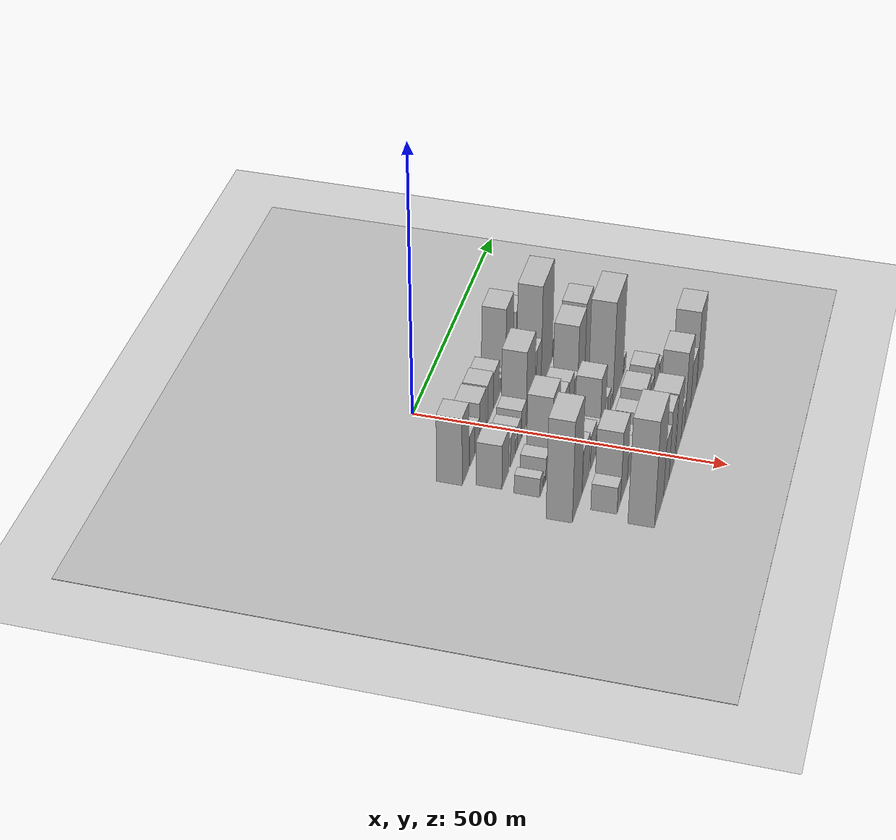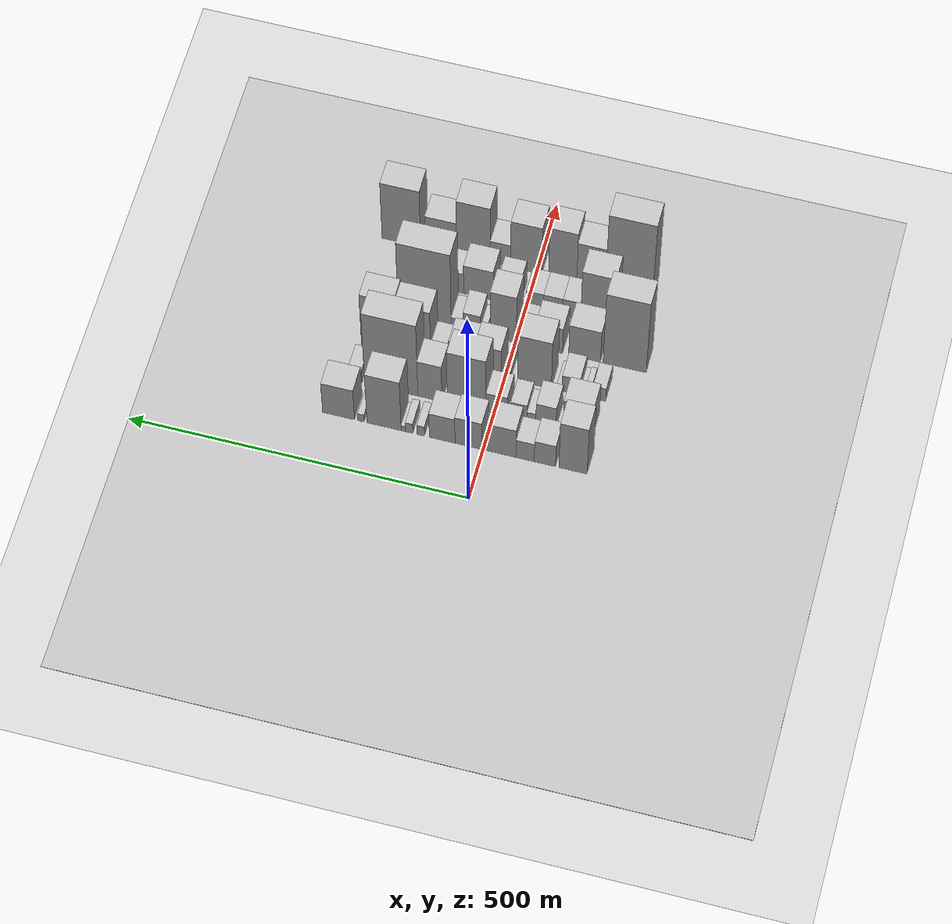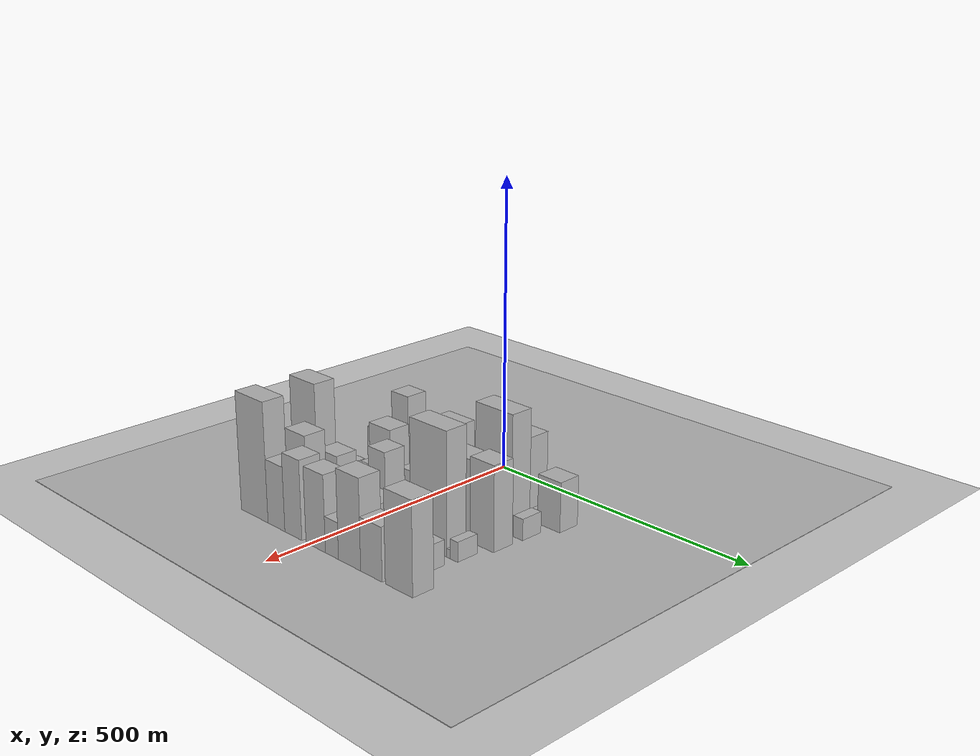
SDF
<sdf version="1.6">
 <world name="default">
  <include><name>ground_plane_1</name><uri>model://HANNAS_ground_plane</uri></include>
  <include>
   <name>ground_plane_2</name>
   <uri>model://HANNAS_ground_plane</uri>
   <pose>100 0 0  0 0 0</pose>
  </include>
  <model name="building_21">
   <static>1</static>
   <pose>100.0000 -129.6058 0 0.000000 0.000000 0.000000</pose>
   <link name="link">
    <pose>0 0 64.50 0 0 0</pose>
    <collision name="collision"><geometry><box><size>40.0000 40.9424 129.0000</size></box></geometry></collision>
    <visual name="visual">
     <cast_shadows>0</cast_shadows>
     <geometry><box><size>40.0000 40.9424 129.0000</size></box></geometry>
     <material>
      <script>
       <uri>model://HANNAS_wall/materials/scripts</uri>
       <uri>model://HANNAS_wall/materials/textures</uri>
       <name>vrc/HANNAS_wall</name>
      </script>
     </material>
    </visual>
   </link>
  </model>
  <model name="building_22">
   <static>1</static>
   <pose>100.0000 -88.7523 0 0.000000 0.000000 0.000000</pose>
   <link name="link">
    <pose>0 0 30.00 0 0 0</pose>
    <collision name="collision"><geometry><box><size>40.0000 30.7647 60.0000</size></box></geometry></collision>
    <visual name="visual">
     <cast_shadows>0</cast_shadows>
     <geometry><box><size>40.0000 30.7647 60.0000</size></box></geometry>
     <material>
      <script>
       <uri>model://HANNAS_wall/materials/scripts</uri>
       <uri>model://HANNAS_wall/materials/textures</uri>
       <name>vrc/HANNAS_wall</name>
      </script>
     </material>
    </visual>
   </link>
  </model>
  <model name="building_23">
   <static>1</static>
   <pose>100.0000 -59.9895 0 0.000000 0.000000 0.000000</pose>
   <link name="link">
    <pose>0 0 25.50 0 0 0</pose>
    <collision name="collision"><geometry><box><size>40.0000 26.7610 51.0000</size></box></geometry></collision>
    <visual name="visual">
     <cast_shadows>0</cast_shadows>
     <geometry><box><size>40.0000 26.7610 51.0000</size></box></geometry>
     <material>
      <script>
       <uri>model://HANNAS_wall/materials/scripts</uri>
       <uri>model://HANNAS_wall/materials/textures</uri>
       <name>vrc/HANNAS_wall</name>
      </script>
     </material>
    </visual>
   </link>
  </model>
  <model name="building_24">
   <static>1</static>
   <pose>100.0000 -25.3485 0 0.000000 0.000000 0.000000</pose>
   <link name="link">
    <pose>0 0 39.00 0 0 0</pose>
    <collision name="collision"><geometry><box><size>40.0000 42.5211 78.0000</size></box></geometry></collision>
    <visual name="visual">
     <cast_shadows>0</cast_shadows>
     <geometry><box><size>40.0000 42.5211 78.0000</size></box></geometry>
     <material>
      <script>
       <uri>model://HANNAS_wall/materials/scripts</uri>
       <uri>model://HANNAS_wall/materials/textures</uri>
       <name>vrc/HANNAS_wall</name>
      </script>
     </material>
    </visual>
   </link>
  </model>
  <model name="building_25">
   <static>1</static>
   <pose>100.0000 22.5860 0 0.000000 0.000000 0.000000</pose>
   <link name="link">
    <pose>0 0 37.50 0 0 0</pose>
    <collision name="collision"><geometry><box><size>40.0000 39.3479 75.0000</size></box></geometry></collision>
    <visual name="visual">
     <cast_shadows>0</cast_shadows>
     <geometry><box><size>40.0000 39.3479 75.0000</size></box></geometry>
     <material>
      <script>
       <uri>model://HANNAS_wall/materials/scripts</uri>
       <uri>model://HANNAS_wall/materials/textures</uri>
       <name>vrc/HANNAS_wall</name>
      </script>
     </material>
    </visual>
   </link>
  </model>
  <model name="building_26">
   <static>1</static>
   <pose>100.0000 61.0567 0 0.000000 0.000000 0.000000</pose>
   <link name="link">
    <pose>0 0 34.50 0 0 0</pose>
    <collision name="collision"><geometry><box><size>40.0000 37.5936 69.0000</size></box></geometry></collision>
    <visual name="visual">
     <cast_shadows>0</cast_shadows>
     <geometry><box><size>40.0000 37.5936 69.0000</size></box></geometry>
     <material>
      <script>
       <uri>model://HANNAS_wall/materials/scripts</uri>
       <uri>model://HANNAS_wall/materials/textures</uri>
       <name>vrc/HANNAS_wall</name>
      </script>
     </material>
    </visual>
   </link>
  </model>
  <model name="building_27">
   <static>1</static>
   <pose>100.0000 92.4200 0 0.000000 0.000000 0.000000</pose>
   <link name="link">
    <pose>0 0 13.50 0 0 0</pose>
    <collision name="collision"><geometry><box><size>40.0000 11.1330 27.0000</size></box></geometry></collision>
    <visual name="visual">
     <cast_shadows>0</cast_shadows>
     <geometry><box><size>40.0000 11.1330 27.0000</size></box></geometry>
     <material>
      <script>
       <uri>model://HANNAS_wall/materials/scripts</uri>
       <uri>model://HANNAS_wall/materials/textures</uri>
       <name>vrc/HANNAS_wall</name>
      </script>
     </material>
    </visual>
   </link>
  </model>
  <model name="building_28">
   <static>1</static>
   <pose>100.0000 109.4418 0 0.000000 0.000000 0.000000</pose>
   <link name="link">
    <pose>0 0 13.50 0 0 0</pose>
    <collision name="collision"><geometry><box><size>40.0000 10.9106 27.0000</size></box></geometry></collision>
    <visual name="visual">
     <cast_shadows>0</cast_shadows>
     <geometry><box><size>40.0000 10.9106 27.0000</size></box></geometry>
     <material>
      <script>
       <uri>model://HANNAS_wall/materials/scripts</uri>
       <uri>model://HANNAS_wall/materials/textures</uri>
       <name>vrc/HANNAS_wall</name>
      </script>
     </material>
    </visual>
   </link>
  </model>
  <model name="building_29">
   <static>1</static>
   <pose>100.0000 118.0026 0 0.000000 0.000000 0.000000</pose>
   <link name="link">
    <pose>0 0 7.50 0 0 0</pose>
    <collision name="collision"><geometry><box><size>40.0000 6.2110 15.0000</size></box></geometry></collision>
    <visual name="visual">
     <cast_shadows>0</cast_shadows>
     <geometry><box><size>40.0000 6.2110 15.0000</size></box></geometry>
     <material>
      <script>
       <uri>model://HANNAS_wall/materials/scripts</uri>
       <uri>model://HANNAS_wall/materials/textures</uri>
       <name>vrc/HANNAS_wall</name>
      </script>
     </material>
    </visual>
   </link>
  </model>
  <model name="building_30">
   <static>1</static>
   <pose>100.0000 146.1916 0 0.000000 0.000000 0.000000</pose>
   <link name="link">
    <pose>0 0 69.00 0 0 0</pose>
    <collision name="collision"><geometry><box><size>40.0000 50.1669 138.0000</size></box></geometry></collision>
    <visual name="visual">
     <cast_shadows>0</cast_shadows>
     <geometry><box><size>40.0000 50.1669 138.0000</size></box></geometry>
     <material>
      <script>
       <uri>model://HANNAS_wall/materials/scripts</uri>
       <uri>model://HANNAS_wall/materials/textures</uri>
       <name>vrc/HANNAS_wall</name>
      </script>
     </material>
    </visual>
   </link>
  </model>
  <model name="building_31">
   <static>1</static>
   <pose>100.0000 179.9955 0 0.000000 0.000000 0.000000</pose>
   <link name="link">
    <pose>0 0 10.50 0 0 0</pose>
    <collision name="collision"><geometry><box><size>40.0000 9.4410 21.0000</size></box></geometry></collision>
    <visual name="visual">
     <cast_shadows>0</cast_shadows>
     <geometry><box><size>40.0000 9.4410 21.0000</size></box></geometry>
     <material>
      <script>
       <uri>model://HANNAS_wall/materials/scripts</uri>
       <uri>model://HANNAS_wall/materials/textures</uri>
       <name>vrc/HANNAS_wall</name>
      </script>
     </material>
    </visual>
   </link>
  </model>
  <model name="building_32">
   <static>1</static>
   <pose>100.0000 213.1292 0 0.000000 0.000000 0.000000</pose>
   <link name="link">
    <pose>0 0 42.00 0 0 0</pose>
    <collision name="collision"><geometry><box><size>40.0000 46.8263 84.0000</size></box></geometry></collision>
    <visual name="visual">
     <cast_shadows>0</cast_shadows>
     <geometry><box><size>40.0000 46.8263 84.0000</size></box></geometry>
     <material>
      <script>
       <uri>model://HANNAS_wall/materials/scripts</uri>
       <uri>model://HANNAS_wall/materials/textures</uri>
       <name>vrc/HANNAS_wall</name>
      </script>
     </material>
    </visual>
   </link>
  </model>
  <model name="building_74">
   <static>1</static>
   <pose>160.0000 -121.5076 0 0.000000 0.000000 0.000000</pose>
   <link name="link">
    <pose>0 0 42.00 0 0 0</pose>
    <collision name="collision"><geometry><box><size>40.0000 43.6202 84.0000</size></box></geometry></collision>
    <visual name="visual">
     <cast_shadows>0</cast_shadows>
     <geometry><box><size>40.0000 43.6202 84.0000</size></box></geometry>
     <material>
      <script>
       <uri>model://HANNAS_wall/materials/scripts</uri>
       <uri>model://HANNAS_wall/materials/textures</uri>
       <name>vrc/HANNAS_wall</name>
      </script>
     </material>
    </visual>
   </link>
  </model>
  <model name="building_75">
   <static>1</static>
   <pose>160.0000 -74.9095 0 0.000000 0.000000 0.000000</pose>
   <link name="link">
    <pose>0 0 28.50 0 0 0</pose>
    <collision name="collision"><geometry><box><size>40.0000 29.5761 57.0000</size></box></geometry></collision>
    <visual name="visual">
     <cast_shadows>0</cast_shadows>
     <geometry><box><size>40.0000 29.5761 57.0000</size></box></geometry>
     <material>
      <script>
       <uri>model://HANNAS_wall/materials/scripts</uri>
       <uri>model://HANNAS_wall/materials/textures</uri>
       <name>vrc/HANNAS_wall</name>
      </script>
     </material>
    </visual>
   </link>
  </model>
  <model name="building_76">
   <static>1</static>
   <pose>160.0000 -53.6113 0 0.000000 0.000000 0.000000</pose>
   <link name="link">
    <pose>0 0 13.50 0 0 0</pose>
    <collision name="collision"><geometry><box><size>40.0000 13.0203 27.0000</size></box></geometry></collision>
    <visual name="visual">
     <cast_shadows>0</cast_shadows>
     <geometry><box><size>40.0000 13.0203 27.0000</size></box></geometry>
     <material>
      <script>
       <uri>model://HANNAS_wall/materials/scripts</uri>
       <uri>model://HANNAS_wall/materials/textures</uri>
       <name>vrc/HANNAS_wall</name>
      </script>
     </material>
    </visual>
   </link>
  </model>
  <model name="building_77">
   <static>1</static>
   <pose>160.0000 -35.1315 0 0.000000 0.000000 0.000000</pose>
   <link name="link">
    <pose>0 0 22.50 0 0 0</pose>
    <collision name="collision"><geometry><box><size>40.0000 23.9393 45.0000</size></box></geometry></collision>
    <visual name="visual">
     <cast_shadows>0</cast_shadows>
     <geometry><box><size>40.0000 23.9393 45.0000</size></box></geometry>
     <material>
      <script>
       <uri>model://HANNAS_wall/materials/scripts</uri>
       <uri>model://HANNAS_wall/materials/textures</uri>
       <name>vrc/HANNAS_wall</name>
      </script>
     </material>
    </visual>
   </link>
  </model>
  <model name="building_78">
   <static>1</static>
   <pose>160.0000 -2.6309 0 0.000000 0.000000 0.000000</pose>
   <link name="link">
    <pose>0 0 27.00 0 0 0</pose>
    <collision name="collision"><geometry><box><size>40.0000 31.0621 54.0000</size></box></geometry></collision>
    <visual name="visual">
     <cast_shadows>0</cast_shadows>
     <geometry><box><size>40.0000 31.0621 54.0000</size></box></geometry>
     <material>
      <script>
       <uri>model://HANNAS_wall/materials/scripts</uri>
       <uri>model://HANNAS_wall/materials/textures</uri>
       <name>vrc/HANNAS_wall</name>
      </script>
     </material>
    </visual>
   </link>
  </model>
  <model name="building_79">
   <static>1</static>
   <pose>160.0000 41.2659 0 0.000000 0.000000 0.000000</pose>
   <link name="link">
    <pose>0 0 72.00 0 0 0</pose>
    <collision name="collision"><geometry><box><size>40.0000 56.7315 144.0000</size></box></geometry></collision>
    <visual name="visual">
     <cast_shadows>0</cast_shadows>
     <geometry><box><size>40.0000 56.7315 144.0000</size></box></geometry>
     <material>
      <script>
       <uri>model://HANNAS_wall/materials/scripts</uri>
       <uri>model://HANNAS_wall/materials/textures</uri>
       <name>vrc/HANNAS_wall</name>
      </script>
     </material>
    </visual>
   </link>
  </model>
  <model name="building_80">
   <static>1</static>
   <pose>160.0000 95.3402 0 0.000000 0.000000 0.000000</pose>
   <link name="link">
    <pose>0 0 49.50 0 0 0</pose>
    <collision name="collision"><geometry><box><size>40.0000 35.4172 99.0000</size></box></geometry></collision>
    <visual name="visual">
     <cast_shadows>0</cast_shadows>
     <geometry><box><size>40.0000 35.4172 99.0000</size></box></geometry>
     <material>
      <script>
       <uri>model://HANNAS_wall/materials/scripts</uri>
       <uri>model://HANNAS_wall/materials/textures</uri>
       <name>vrc/HANNAS_wall</name>
      </script>
     </material>
    </visual>
   </link>
  </model>
  <model name="building_81">
   <static>1</static>
   <pose>160.0000 152.2985 0 0.000000 0.000000 0.000000</pose>
   <link name="link">
    <pose>0 0 99.00 0 0 0</pose>
    <collision name="collision"><geometry><box><size>40.0000 78.4993 198.0000</size></box></geometry></collision>
    <visual name="visual">
     <cast_shadows>0</cast_shadows>
     <geometry><box><size>40.0000 78.4993 198.0000</size></box></geometry>
     <material>
      <script>
       <uri>model://HANNAS_wall/materials/scripts</uri>
       <uri>model://HANNAS_wall/materials/textures</uri>
       <name>vrc/HANNAS_wall</name>
      </script>
     </material>
    </visual>
   </link>
  </model>
  <model name="building_82">
   <static>1</static>
   <pose>160.0000 205.4704 0 0.000000 0.000000 0.000000</pose>
   <link name="link">
    <pose>0 0 18.00 0 0 0</pose>
    <collision name="collision"><geometry><box><size>40.0000 19.8443 36.0000</size></box></geometry></collision>
    <visual name="visual">
     <cast_shadows>0</cast_shadows>
     <geometry><box><size>40.0000 19.8443 36.0000</size></box></geometry>
     <material>
      <script>
       <uri>model://HANNAS_wall/materials/scripts</uri>
       <uri>model://HANNAS_wall/materials/textures</uri>
       <name>vrc/HANNAS_wall</name>
      </script>
     </material>
    </visual>
   </link>
  </model>
  <model name="building_126">
   <static>1</static>
   <pose>220.0000 -137.4615 0 0.000000 0.000000 0.000000</pose>
   <link name="link">
    <pose>0 0 18.00 0 0 0</pose>
    <collision name="collision"><geometry><box><size>40.0000 19.3654 36.0000</size></box></geometry></collision>
    <visual name="visual">
     <cast_shadows>0</cast_shadows>
     <geometry><box><size>40.0000 19.3654 36.0000</size></box></geometry>
     <material>
      <script>
       <uri>model://HANNAS_wall/materials/scripts</uri>
       <uri>model://HANNAS_wall/materials/textures</uri>
       <name>vrc/HANNAS_wall</name>
      </script>
     </material>
    </visual>
   </link>
  </model>
  <model name="building_127">
   <static>1</static>
   <pose>220.0000 -120.6199 0 0.000000 0.000000 0.000000</pose>
   <link name="link">
    <pose>0 0 9.00 0 0 0</pose>
    <collision name="collision"><geometry><box><size>40.0000 8.3176 18.0000</size></box></geometry></collision>
    <visual name="visual">
     <cast_shadows>0</cast_shadows>
     <geometry><box><size>40.0000 8.3176 18.0000</size></box></geometry>
     <material>
      <script>
       <uri>model://HANNAS_wall/materials/scripts</uri>
       <uri>model://HANNAS_wall/materials/textures</uri>
       <name>vrc/HANNAS_wall</name>
      </script>
     </material>
    </visual>
   </link>
  </model>
  <model name="building_128">
   <static>1</static>
   <pose>220.0000 -112.8443 0 0.000000 0.000000 0.000000</pose>
   <link name="link">
    <pose>0 0 7.50 0 0 0</pose>
    <collision name="collision"><geometry><box><size>40.0000 7.2336 15.0000</size></box></geometry></collision>
    <visual name="visual">
     <cast_shadows>0</cast_shadows>
     <geometry><box><size>40.0000 7.2336 15.0000</size></box></geometry>
     <material>
      <script>
       <uri>model://HANNAS_wall/materials/scripts</uri>
       <uri>model://HANNAS_wall/materials/textures</uri>
       <name>vrc/HANNAS_wall</name>
      </script>
     </material>
    </visual>
   </link>
  </model>
  <model name="building_129">
   <static>1</static>
   <pose>220.0000 -96.0886 0 0.000000 0.000000 0.000000</pose>
   <link name="link">
    <pose>0 0 22.50 0 0 0</pose>
    <collision name="collision"><geometry><box><size>40.0000 26.2778 45.0000</size></box></geometry></collision>
    <visual name="visual">
     <cast_shadows>0</cast_shadows>
     <geometry><box><size>40.0000 26.2778 45.0000</size></box></geometry>
     <material>
      <script>
       <uri>model://HANNAS_wall/materials/scripts</uri>
       <uri>model://HANNAS_wall/materials/textures</uri>
       <name>vrc/HANNAS_wall</name>
      </script>
     </material>
    </visual>
   </link>
  </model>
  <model name="building_130">
   <static>1</static>
   <pose>220.0000 -79.2034 0 0.000000 0.000000 0.000000</pose>
   <link name="link">
    <pose>0 0 9.00 0 0 0</pose>
    <collision name="collision"><geometry><box><size>40.0000 7.4925 18.0000</size></box></geometry></collision>
    <visual name="visual">
     <cast_shadows>0</cast_shadows>
     <geometry><box><size>40.0000 7.4925 18.0000</size></box></geometry>
     <material>
      <script>
       <uri>model://HANNAS_wall/materials/scripts</uri>
       <uri>model://HANNAS_wall/materials/textures</uri>
       <name>vrc/HANNAS_wall</name>
      </script>
     </material>
    </visual>
   </link>
  </model>
  <model name="building_131">
   <static>1</static>
   <pose>220.0000 -42.5322 0 0.000000 0.000000 0.000000</pose>
   <link name="link">
    <pose>0 0 64.50 0 0 0</pose>
    <collision name="collision"><geometry><box><size>40.0000 49.8499 129.0000</size></box></geometry></collision>
    <visual name="visual">
     <cast_shadows>0</cast_shadows>
     <geometry><box><size>40.0000 49.8499 129.0000</size></box></geometry>
     <material>
      <script>
       <uri>model://HANNAS_wall/materials/scripts</uri>
       <uri>model://HANNAS_wall/materials/textures</uri>
       <name>vrc/HANNAS_wall</name>
      </script>
     </material>
    </visual>
   </link>
  </model>
  <model name="building_132">
   <static>1</static>
   <pose>220.0000 -2.4166 0 0.000000 0.000000 0.000000</pose>
   <link name="link">
    <pose>0 0 10.50 0 0 0</pose>
    <collision name="collision"><geometry><box><size>40.0000 10.3814 21.0000</size></box></geometry></collision>
    <visual name="visual">
     <cast_shadows>0</cast_shadows>
     <geometry><box><size>40.0000 10.3814 21.0000</size></box></geometry>
     <material>
      <script>
       <uri>model://HANNAS_wall/materials/scripts</uri>
       <uri>model://HANNAS_wall/materials/textures</uri>
       <name>vrc/HANNAS_wall</name>
      </script>
     </material>
    </visual>
   </link>
  </model>
  <model name="building_133">
   <static>1</static>
   <pose>220.0000 26.1121 0 0.000000 0.000000 0.000000</pose>
   <link name="link">
    <pose>0 0 37.50 0 0 0</pose>
    <collision name="collision"><geometry><box><size>40.0000 38.6759 75.0000</size></box></geometry></collision>
    <visual name="visual">
     <cast_shadows>0</cast_shadows>
     <geometry><box><size>40.0000 38.6759 75.0000</size></box></geometry>
     <material>
      <script>
       <uri>model://HANNAS_wall/materials/scripts</uri>
       <uri>model://HANNAS_wall/materials/textures</uri>
       <name>vrc/HANNAS_wall</name>
      </script>
     </material>
    </visual>
   </link>
  </model>
  <model name="building_134">
   <static>1</static>
   <pose>220.0000 64.5930 0 0.000000 0.000000 0.000000</pose>
   <link name="link">
    <pose>0 0 34.50 0 0 0</pose>
    <collision name="collision"><geometry><box><size>40.0000 38.2859 69.0000</size></box></geometry></collision>
    <visual name="visual">
     <cast_shadows>0</cast_shadows>
     <geometry><box><size>40.0000 38.2859 69.0000</size></box></geometry>
     <material>
      <script>
       <uri>model://HANNAS_wall/materials/scripts</uri>
       <uri>model://HANNAS_wall/materials/textures</uri>
       <name>vrc/HANNAS_wall</name>
      </script>
     </material>
    </visual>
   </link>
  </model>
  <model name="building_135">
   <static>1</static>
   <pose>220.0000 97.0246 0 0.000000 0.000000 0.000000</pose>
   <link name="link">
    <pose>0 0 24.00 0 0 0</pose>
    <collision name="collision"><geometry><box><size>40.0000 26.5773 48.0000</size></box></geometry></collision>
    <visual name="visual">
     <cast_shadows>0</cast_shadows>
     <geometry><box><size>40.0000 26.5773 48.0000</size></box></geometry>
     <material>
      <script>
       <uri>model://HANNAS_wall/materials/scripts</uri>
       <uri>model://HANNAS_wall/materials/textures</uri>
       <name>vrc/HANNAS_wall</name>
      </script>
     </material>
    </visual>
   </link>
  </model>
  <model name="building_136">
   <static>1</static>
   <pose>220.0000 136.8343 0 0.000000 0.000000 0.000000</pose>
   <link name="link">
    <pose>0 0 67.50 0 0 0</pose>
    <collision name="collision"><geometry><box><size>40.0000 53.0421 135.0000</size></box></geometry></collision>
    <visual name="visual">
     <cast_shadows>0</cast_shadows>
     <geometry><box><size>40.0000 53.0421 135.0000</size></box></geometry>
     <material>
      <script>
       <uri>model://HANNAS_wall/materials/scripts</uri>
       <uri>model://HANNAS_wall/materials/textures</uri>
       <name>vrc/HANNAS_wall</name>
      </script>
     </material>
    </visual>
   </link>
  </model>
  <model name="building_137">
   <static>1</static>
   <pose>220.0000 188.1994 0 0.000000 0.000000 0.000000</pose>
   <link name="link">
    <pose>0 0 70.50 0 0 0</pose>
    <collision name="collision"><geometry><box><size>40.0000 49.6882 141.0000</size></box></geometry></collision>
    <visual name="visual">
     <cast_shadows>0</cast_shadows>
     <geometry><box><size>40.0000 49.6882 141.0000</size></box></geometry>
     <material>
      <script>
       <uri>model://HANNAS_wall/materials/scripts</uri>
       <uri>model://HANNAS_wall/materials/textures</uri>
       <name>vrc/HANNAS_wall</name>
      </script>
     </material>
    </visual>
   </link>
  </model>
  <model name="building_182">
   <static>1</static>
   <pose>280.0000 -160.0938 0 0.000000 0.000000 0.000000</pose>
   <link name="link">
    <pose>0 0 96.00 0 0 0</pose>
    <collision name="collision"><geometry><box><size>40.0000 63.3338 192.0000</size></box></geometry></collision>
    <visual name="visual">
     <cast_shadows>0</cast_shadows>
     <geometry><box><size>40.0000 63.3338 192.0000</size></box></geometry>
     <material>
      <script>
       <uri>model://HANNAS_wall/materials/scripts</uri>
       <uri>model://HANNAS_wall/materials/textures</uri>
       <name>vrc/HANNAS_wall</name>
      </script>
     </material>
    </visual>
   </link>
  </model>
  <model name="building_183">
   <static>1</static>
   <pose>280.0000 -101.0419 0 0.000000 0.000000 0.000000</pose>
   <link name="link">
    <pose>0 0 42.00 0 0 0</pose>
    <collision name="collision"><geometry><box><size>40.0000 46.7699 84.0000</size></box></geometry></collision>
    <visual name="visual">
     <cast_shadows>0</cast_shadows>
     <geometry><box><size>40.0000 46.7699 84.0000</size></box></geometry>
     <material>
      <script>
       <uri>model://HANNAS_wall/materials/scripts</uri>
       <uri>model://HANNAS_wall/materials/textures</uri>
       <name>vrc/HANNAS_wall</name>
      </script>
     </material>
    </visual>
   </link>
  </model>
  <model name="building_184">
   <static>1</static>
   <pose>280.0000 -48.4659 0 0.000000 0.000000 0.000000</pose>
   <link name="link">
    <pose>0 0 34.50 0 0 0</pose>
    <collision name="collision"><geometry><box><size>40.0000 40.3822 69.0000</size></box></geometry></collision>
    <visual name="visual">
     <cast_shadows>0</cast_shadows>
     <geometry><box><size>40.0000 40.3822 69.0000</size></box></geometry>
     <material>
      <script>
       <uri>model://HANNAS_wall/materials/scripts</uri>
       <uri>model://HANNAS_wall/materials/textures</uri>
       <name>vrc/HANNAS_wall</name>
      </script>
     </material>
    </visual>
   </link>
  </model>
  <model name="building_185">
   <static>1</static>
   <pose>280.0000 -14.2084 0 0.000000 0.000000 0.000000</pose>
   <link name="link">
    <pose>0 0 25.50 0 0 0</pose>
    <collision name="collision"><geometry><box><size>40.0000 28.1328 51.0000</size></box></geometry></collision>
    <visual name="visual">
     <cast_shadows>0</cast_shadows>
     <geometry><box><size>40.0000 28.1328 51.0000</size></box></geometry>
     <material>
      <script>
       <uri>model://HANNAS_wall/materials/scripts</uri>
       <uri>model://HANNAS_wall/materials/textures</uri>
       <name>vrc/HANNAS_wall</name>
      </script>
     </material>
    </visual>
   </link>
  </model>
  <model name="building_186">
   <static>1</static>
   <pose>280.0000 19.2048 0 0.000000 0.000000 0.000000</pose>
   <link name="link">
    <pose>0 0 63.00 0 0 0</pose>
    <collision name="collision"><geometry><box><size>40.0000 38.6936 126.0000</size></box></geometry></collision>
    <visual name="visual">
     <cast_shadows>0</cast_shadows>
     <geometry><box><size>40.0000 38.6936 126.0000</size></box></geometry>
     <material>
      <script>
       <uri>model://HANNAS_wall/materials/scripts</uri>
       <uri>model://HANNAS_wall/materials/textures</uri>
       <name>vrc/HANNAS_wall</name>
      </script>
     </material>
    </visual>
   </link>
  </model>
  <model name="building_187">
   <static>1</static>
   <pose>280.0000 48.2426 0 0.000000 0.000000 0.000000</pose>
   <link name="link">
    <pose>0 0 10.50 0 0 0</pose>
    <collision name="collision"><geometry><box><size>40.0000 9.3821 21.0000</size></box></geometry></collision>
    <visual name="visual">
     <cast_shadows>0</cast_shadows>
     <geometry><box><size>40.0000 9.3821 21.0000</size></box></geometry>
     <material>
      <script>
       <uri>model://HANNAS_wall/materials/scripts</uri>
       <uri>model://HANNAS_wall/materials/textures</uri>
       <name>vrc/HANNAS_wall</name>
      </script>
     </material>
    </visual>
   </link>
  </model>
  <model name="building_188">
   <static>1</static>
   <pose>280.0000 65.9658 0 0.000000 0.000000 0.000000</pose>
   <link name="link">
    <pose>0 0 25.50 0 0 0</pose>
    <collision name="collision"><geometry><box><size>40.0000 26.0643 51.0000</size></box></geometry></collision>
    <visual name="visual">
     <cast_shadows>0</cast_shadows>
     <geometry><box><size>40.0000 26.0643 51.0000</size></box></geometry>
     <material>
      <script>
       <uri>model://HANNAS_wall/materials/scripts</uri>
       <uri>model://HANNAS_wall/materials/textures</uri>
       <name>vrc/HANNAS_wall</name>
      </script>
     </material>
    </visual>
   </link>
  </model>
  <model name="building_189">
   <static>1</static>
   <pose>280.0000 87.6795 0 0.000000 0.000000 0.000000</pose>
   <link name="link">
    <pose>0 0 15.00 0 0 0</pose>
    <collision name="collision"><geometry><box><size>40.0000 17.3631 30.0000</size></box></geometry></collision>
    <visual name="visual">
     <cast_shadows>0</cast_shadows>
     <geometry><box><size>40.0000 17.3631 30.0000</size></box></geometry>
     <material>
      <script>
       <uri>model://HANNAS_wall/materials/scripts</uri>
       <uri>model://HANNAS_wall/materials/textures</uri>
       <name>vrc/HANNAS_wall</name>
      </script>
     </material>
    </visual>
   </link>
  </model>
  <model name="building_190">
   <static>1</static>
   <pose>280.0000 135.7326 0 0.000000 0.000000 0.000000</pose>
   <link name="link">
    <pose>0 0 100.50 0 0 0</pose>
    <collision name="collision"><geometry><box><size>40.0000 78.7432 201.0000</size></box></geometry></collision>
    <visual name="visual">
     <cast_shadows>0</cast_shadows>
     <geometry><box><size>40.0000 78.7432 201.0000</size></box></geometry>
     <material>
      <script>
       <uri>model://HANNAS_wall/materials/scripts</uri>
       <uri>model://HANNAS_wall/materials/textures</uri>
       <name>vrc/HANNAS_wall</name>
      </script>
     </material>
    </visual>
   </link>
  </model>
  <model name="building_191">
   <static>1</static>
   <pose>280.0000 178.4374 0 0.000000 0.000000 0.000000</pose>
   <link name="link">
    <pose>0 0 7.50 0 0 0</pose>
    <collision name="collision"><geometry><box><size>40.0000 6.6664 15.0000</size></box></geometry></collision>
    <visual name="visual">
     <cast_shadows>0</cast_shadows>
     <geometry><box><size>40.0000 6.6664 15.0000</size></box></geometry>
     <material>
      <script>
       <uri>model://HANNAS_wall/materials/scripts</uri>
       <uri>model://HANNAS_wall/materials/textures</uri>
       <name>vrc/HANNAS_wall</name>
      </script>
     </material>
    </visual>
   </link>
  </model>
  <model name="building_192">
   <static>1</static>
   <pose>280.0000 190.1062 0 0.000000 0.000000 0.000000</pose>
   <link name="link">
    <pose>0 0 16.50 0 0 0</pose>
    <collision name="collision"><geometry><box><size>40.0000 16.6711 33.0000</size></box></geometry></collision>
    <visual name="visual">
     <cast_shadows>0</cast_shadows>
     <geometry><box><size>40.0000 16.6711 33.0000</size></box></geometry>
     <material>
      <script>
       <uri>model://HANNAS_wall/materials/scripts</uri>
       <uri>model://HANNAS_wall/materials/textures</uri>
       <name>vrc/HANNAS_wall</name>
      </script>
     </material>
    </visual>
   </link>
  </model>
  <model name="building_236">
   <static>1</static>
   <pose>340.0000 -142.2281 0 0.000000 0.000000 0.000000</pose>
   <link name="link">
    <pose>0 0 25.50 0 0 0</pose>
    <collision name="collision"><geometry><box><size>40.0000 26.1395 51.0000</size></box></geometry></collision>
    <visual name="visual">
     <cast_shadows>0</cast_shadows>
     <geometry><box><size>40.0000 26.1395 51.0000</size></box></geometry>
     <material>
      <script>
       <uri>model://HANNAS_wall/materials/scripts</uri>
       <uri>model://HANNAS_wall/materials/textures</uri>
       <name>vrc/HANNAS_wall</name>
      </script>
     </material>
    </visual>
   </link>
  </model>
  <model name="building_237">
   <static>1</static>
   <pose>340.0000 -104.6519 0 0.000000 0.000000 0.000000</pose>
   <link name="link">
    <pose>0 0 67.50 0 0 0</pose>
    <collision name="collision"><geometry><box><size>40.0000 49.0129 135.0000</size></box></geometry></collision>
    <visual name="visual">
     <cast_shadows>0</cast_shadows>
     <geometry><box><size>40.0000 49.0129 135.0000</size></box></geometry>
     <material>
      <script>
       <uri>model://HANNAS_wall/materials/scripts</uri>
       <uri>model://HANNAS_wall/materials/textures</uri>
       <name>vrc/HANNAS_wall</name>
      </script>
     </material>
    </visual>
   </link>
  </model>
  <model name="building_238">
   <static>1</static>
   <pose>340.0000 -66.8010 0 0.000000 0.000000 0.000000</pose>
   <link name="link">
    <pose>0 0 24.00 0 0 0</pose>
    <collision name="collision"><geometry><box><size>40.0000 26.6890 48.0000</size></box></geometry></collision>
    <visual name="visual">
     <cast_shadows>0</cast_shadows>
     <geometry><box><size>40.0000 26.6890 48.0000</size></box></geometry>
     <material>
      <script>
       <uri>model://HANNAS_wall/materials/scripts</uri>
       <uri>model://HANNAS_wall/materials/textures</uri>
       <name>vrc/HANNAS_wall</name>
      </script>
     </material>
    </visual>
   </link>
  </model>
  <model name="building_239">
   <static>1</static>
   <pose>340.0000 -39.0963 0 0.000000 0.000000 0.000000</pose>
   <link name="link">
    <pose>0 0 24.00 0 0 0</pose>
    <collision name="collision"><geometry><box><size>40.0000 28.7203 48.0000</size></box></geometry></collision>
    <visual name="visual">
     <cast_shadows>0</cast_shadows>
     <geometry><box><size>40.0000 28.7203 48.0000</size></box></geometry>
     <material>
      <script>
       <uri>model://HANNAS_wall/materials/scripts</uri>
       <uri>model://HANNAS_wall/materials/textures</uri>
       <name>vrc/HANNAS_wall</name>
      </script>
     </material>
    </visual>
   </link>
  </model>
  <model name="building_240">
   <static>1</static>
   <pose>340.0000 -11.7680 0 0.000000 0.000000 0.000000</pose>
   <link name="link">
    <pose>0 0 24.00 0 0 0</pose>
    <collision name="collision"><geometry><box><size>40.0000 25.9363 48.0000</size></box></geometry></collision>
    <visual name="visual">
     <cast_shadows>0</cast_shadows>
     <geometry><box><size>40.0000 25.9363 48.0000</size></box></geometry>
     <material>
      <script>
       <uri>model://HANNAS_wall/materials/scripts</uri>
       <uri>model://HANNAS_wall/materials/textures</uri>
       <name>vrc/HANNAS_wall</name>
      </script>
     </material>
    </visual>
   </link>
  </model>
  <model name="building_241">
   <static>1</static>
   <pose>340.0000 26.4461 0 0.000000 0.000000 0.000000</pose>
   <link name="link">
    <pose>0 0 31.50 0 0 0</pose>
    <collision name="collision"><geometry><box><size>40.0000 32.4920 63.0000</size></box></geometry></collision>
    <visual name="visual">
     <cast_shadows>0</cast_shadows>
     <geometry><box><size>40.0000 32.4920 63.0000</size></box></geometry>
     <material>
      <script>
       <uri>model://HANNAS_wall/materials/scripts</uri>
       <uri>model://HANNAS_wall/materials/textures</uri>
       <name>vrc/HANNAS_wall</name>
      </script>
     </material>
    </visual>
   </link>
  </model>
  <model name="building_242">
   <static>1</static>
   <pose>340.0000 46.2791 0 0.000000 0.000000 0.000000</pose>
   <link name="link">
    <pose>0 0 7.50 0 0 0</pose>
    <collision name="collision"><geometry><box><size>40.0000 7.1740 15.0000</size></box></geometry></collision>
    <visual name="visual">
     <cast_shadows>0</cast_shadows>
     <geometry><box><size>40.0000 7.1740 15.0000</size></box></geometry>
     <material>
      <script>
       <uri>model://HANNAS_wall/materials/scripts</uri>
       <uri>model://HANNAS_wall/materials/textures</uri>
       <name>vrc/HANNAS_wall</name>
      </script>
     </material>
    </visual>
   </link>
  </model>
  <model name="building_243">
   <static>1</static>
   <pose>340.0000 71.9050 0 0.000000 0.000000 0.000000</pose>
   <link name="link">
    <pose>0 0 39.00 0 0 0</pose>
    <collision name="collision"><geometry><box><size>40.0000 44.0777 78.0000</size></box></geometry></collision>
    <visual name="visual">
     <cast_shadows>0</cast_shadows>
     <geometry><box><size>40.0000 44.0777 78.0000</size></box></geometry>
     <material>
      <script>
       <uri>model://HANNAS_wall/materials/scripts</uri>
       <uri>model://HANNAS_wall/materials/textures</uri>
       <name>vrc/HANNAS_wall</name>
      </script>
     </material>
    </visual>
   </link>
  </model>
  <model name="building_244">
   <static>1</static>
   <pose>340.0000 107.6420 0 0.000000 0.000000 0.000000</pose>
   <link name="link">
    <pose>0 0 27.00 0 0 0</pose>
    <collision name="collision"><geometry><box><size>40.0000 27.3964 54.0000</size></box></geometry></collision>
    <visual name="visual">
     <cast_shadows>0</cast_shadows>
     <geometry><box><size>40.0000 27.3964 54.0000</size></box></geometry>
     <material>
      <script>
       <uri>model://HANNAS_wall/materials/scripts</uri>
       <uri>model://HANNAS_wall/materials/textures</uri>
       <name>vrc/HANNAS_wall</name>
      </script>
     </material>
    </visual>
   </link>
  </model>
  <model name="building_245">
   <static>1</static>
   <pose>340.0000 140.2116 0 0.000000 0.000000 0.000000</pose>
   <link name="link">
    <pose>0 0 34.50 0 0 0</pose>
    <collision name="collision"><geometry><box><size>40.0000 37.7428 69.0000</size></box></geometry></collision>
    <visual name="visual">
     <cast_shadows>0</cast_shadows>
     <geometry><box><size>40.0000 37.7428 69.0000</size></box></geometry>
     <material>
      <script>
       <uri>model://HANNAS_wall/materials/scripts</uri>
       <uri>model://HANNAS_wall/materials/textures</uri>
       <name>vrc/HANNAS_wall</name>
      </script>
     </material>
    </visual>
   </link>
  </model>
  <model name="building_246">
   <static>1</static>
   <pose>340.0000 180.4221 0 0.000000 0.000000 0.000000</pose>
   <link name="link">
    <pose>0 0 21.00 0 0 0</pose>
    <collision name="collision"><geometry><box><size>40.0000 22.6780 42.0000</size></box></geometry></collision>
    <visual name="visual">
     <cast_shadows>0</cast_shadows>
     <geometry><box><size>40.0000 22.6780 42.0000</size></box></geometry>
     <material>
      <script>
       <uri>model://HANNAS_wall/materials/scripts</uri>
       <uri>model://HANNAS_wall/materials/textures</uri>
       <name>vrc/HANNAS_wall</name>
      </script>
     </material>
    </visual>
   </link>
  </model>
  <model name="building_288">
   <static>1</static>
   <pose>400.0000 -136.8352 0 0.000000 0.000000 0.000000</pose>
   <link name="link">
    <pose>0 0 100.50 0 0 0</pose>
    <collision name="collision"><geometry><box><size>40.0000 69.8189 201.0000</size></box></geometry></collision>
    <visual name="visual">
     <cast_shadows>0</cast_shadows>
     <geometry><box><size>40.0000 69.8189 201.0000</size></box></geometry>
     <material>
      <script>
       <uri>model://HANNAS_wall/materials/scripts</uri>
       <uri>model://HANNAS_wall/materials/textures</uri>
       <name>vrc/HANNAS_wall</name>
      </script>
     </material>
    </visual>
   </link>
  </model>
  <model name="building_289">
   <static>1</static>
   <pose>400.0000 -80.5268 0 0.000000 0.000000 0.000000</pose>
   <link name="link">
    <pose>0 0 54.00 0 0 0</pose>
    <collision name="collision"><geometry><box><size>40.0000 42.7980 108.0000</size></box></geometry></collision>
    <visual name="visual">
     <cast_shadows>0</cast_shadows>
     <geometry><box><size>40.0000 42.7980 108.0000</size></box></geometry>
     <material>
      <script>
       <uri>model://HANNAS_wall/materials/scripts</uri>
       <uri>model://HANNAS_wall/materials/textures</uri>
       <name>vrc/HANNAS_wall</name>
      </script>
     </material>
    </visual>
   </link>
  </model>
  <model name="building_290">
   <static>1</static>
   <pose>400.0000 -38.1095 0 0.000000 0.000000 0.000000</pose>
   <link name="link">
    <pose>0 0 66.00 0 0 0</pose>
    <collision name="collision"><geometry><box><size>40.0000 42.0367 132.0000</size></box></geometry></collision>
    <visual name="visual">
     <cast_shadows>0</cast_shadows>
     <geometry><box><size>40.0000 42.0367 132.0000</size></box></geometry>
     <material>
      <script>
       <uri>model://HANNAS_wall/materials/scripts</uri>
       <uri>model://HANNAS_wall/materials/textures</uri>
       <name>vrc/HANNAS_wall</name>
      </script>
     </material>
    </visual>
   </link>
  </model>
  <model name="building_291">
   <static>1</static>
   <pose>400.0000 16.1941 0 0.000000 0.000000 0.000000</pose>
   <link name="link">
    <pose>0 0 63.00 0 0 0</pose>
    <collision name="collision"><geometry><box><size>40.0000 46.5704 126.0000</size></box></geometry></collision>
    <visual name="visual">
     <cast_shadows>0</cast_shadows>
     <geometry><box><size>40.0000 46.5704 126.0000</size></box></geometry>
     <material>
      <script>
       <uri>model://HANNAS_wall/materials/scripts</uri>
       <uri>model://HANNAS_wall/materials/textures</uri>
       <name>vrc/HANNAS_wall</name>
      </script>
     </material>
    </visual>
   </link>
  </model>
  <model name="building_292">
   <static>1</static>
   <pose>400.0000 54.7291 0 0.000000 0.000000 0.000000</pose>
   <link name="link">
    <pose>0 0 30.00 0 0 0</pose>
    <collision name="collision"><geometry><box><size>40.0000 30.4997 60.0000</size></box></geometry></collision>
    <visual name="visual">
     <cast_shadows>0</cast_shadows>
     <geometry><box><size>40.0000 30.4997 60.0000</size></box></geometry>
     <material>
      <script>
       <uri>model://HANNAS_wall/materials/scripts</uri>
       <uri>model://HANNAS_wall/materials/textures</uri>
       <name>vrc/HANNAS_wall</name>
      </script>
     </material>
    </visual>
   </link>
  </model>
  <model name="building_293">
   <static>1</static>
   <pose>400.0000 95.2707 0 0.000000 0.000000 0.000000</pose>
   <link name="link">
    <pose>0 0 73.50 0 0 0</pose>
    <collision name="collision"><geometry><box><size>40.0000 50.5836 147.0000</size></box></geometry></collision>
    <visual name="visual">
     <cast_shadows>0</cast_shadows>
     <geometry><box><size>40.0000 50.5836 147.0000</size></box></geometry>
     <material>
      <script>
       <uri>model://HANNAS_wall/materials/scripts</uri>
       <uri>model://HANNAS_wall/materials/textures</uri>
       <name>vrc/HANNAS_wall</name>
      </script>
     </material>
    </visual>
   </link>
  </model>
  <model name="building_294">
   <static>1</static>
   <pose>400.0000 144.1457 0 0.000000 0.000000 0.000000</pose>
   <link name="link">
    <pose>0 0 43.50 0 0 0</pose>
    <collision name="collision"><geometry><box><size>40.0000 47.1663 87.0000</size></box></geometry></collision>
    <visual name="visual">
     <cast_shadows>0</cast_shadows>
     <geometry><box><size>40.0000 47.1663 87.0000</size></box></geometry>
     <material>
      <script>
       <uri>model://HANNAS_wall/materials/scripts</uri>
       <uri>model://HANNAS_wall/materials/textures</uri>
       <name>vrc/HANNAS_wall</name>
      </script>
     </material>
    </visual>
   </link>
  </model>
  <model name="building_295">
   <static>1</static>
   <pose>400.0000 203.7302 0 0.000000 0.000000 0.000000</pose>
   <link name="link">
    <pose>0 0 75.00 0 0 0</pose>
    <collision name="collision"><geometry><box><size>40.0000 58.0026 150.0000</size></box></geometry></collision>
    <visual name="visual">
     <cast_shadows>0</cast_shadows>
     <geometry><box><size>40.0000 58.0026 150.0000</size></box></geometry>
     <material>
      <script>
       <uri>model://HANNAS_wall/materials/scripts</uri>
       <uri>model://HANNAS_wall/materials/textures</uri>
       <name>vrc/HANNAS_wall</name>
      </script>
     </material>
    </visual>
   </link>
  </model>
 </world>
</sdf>
